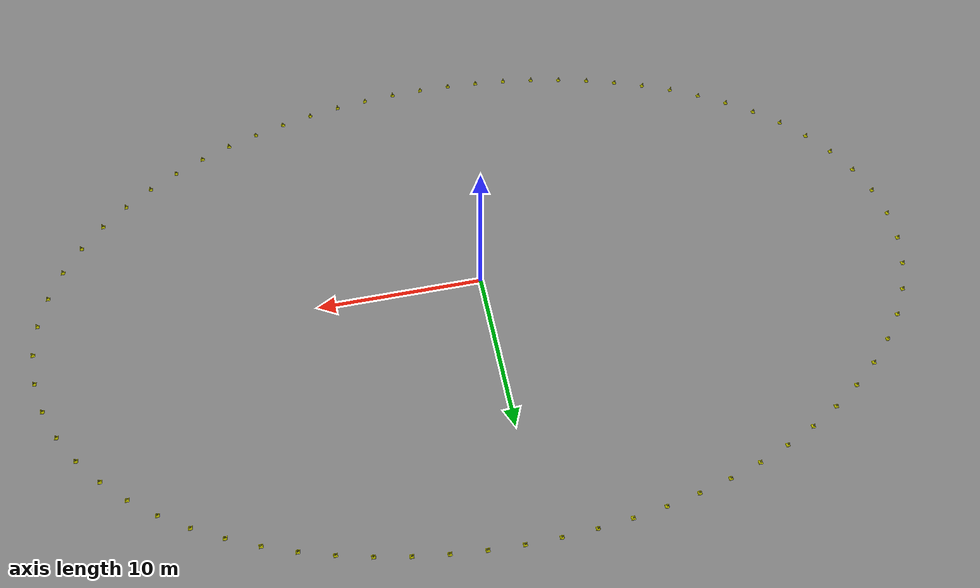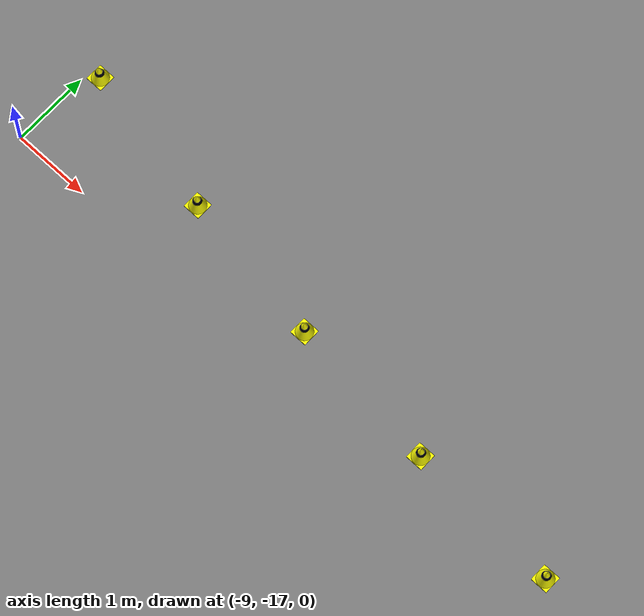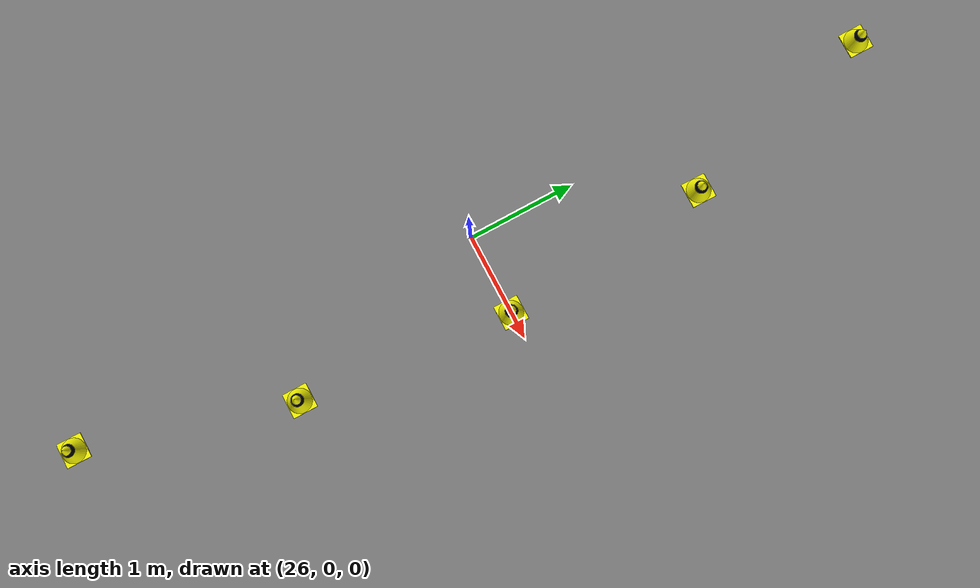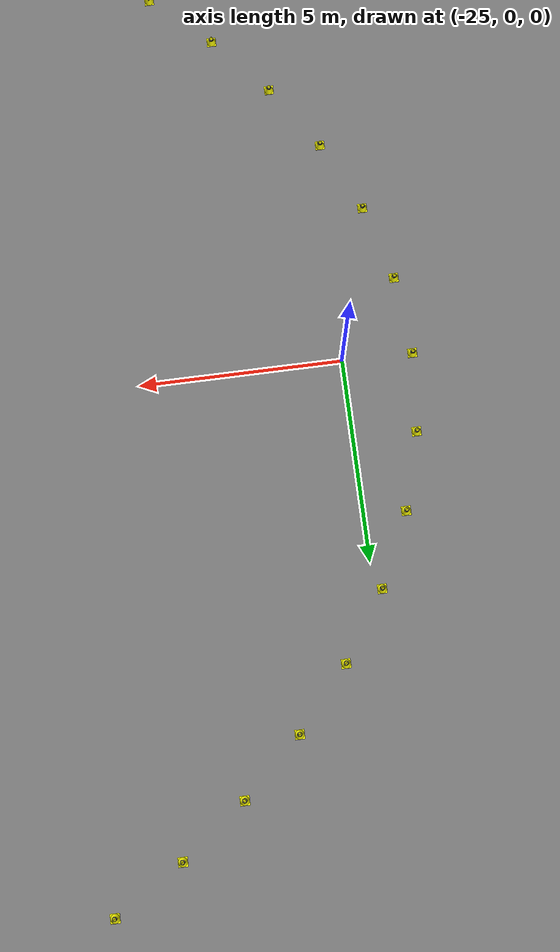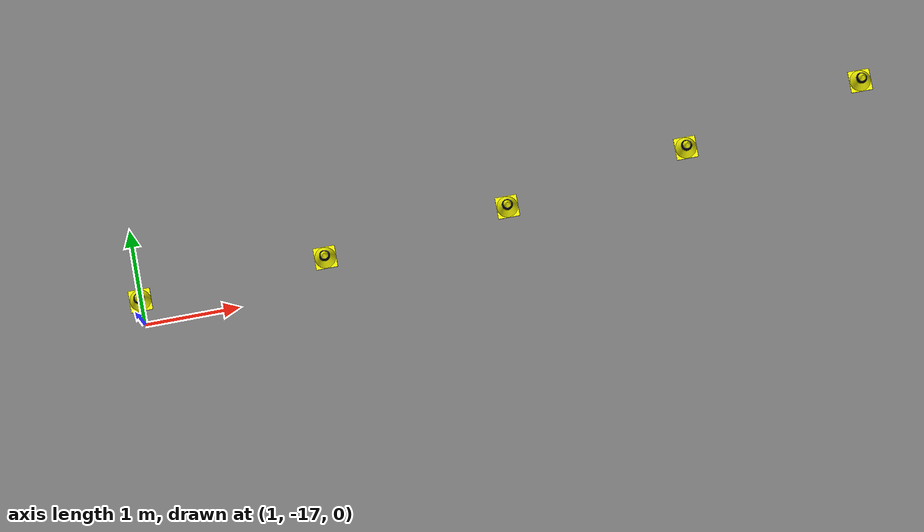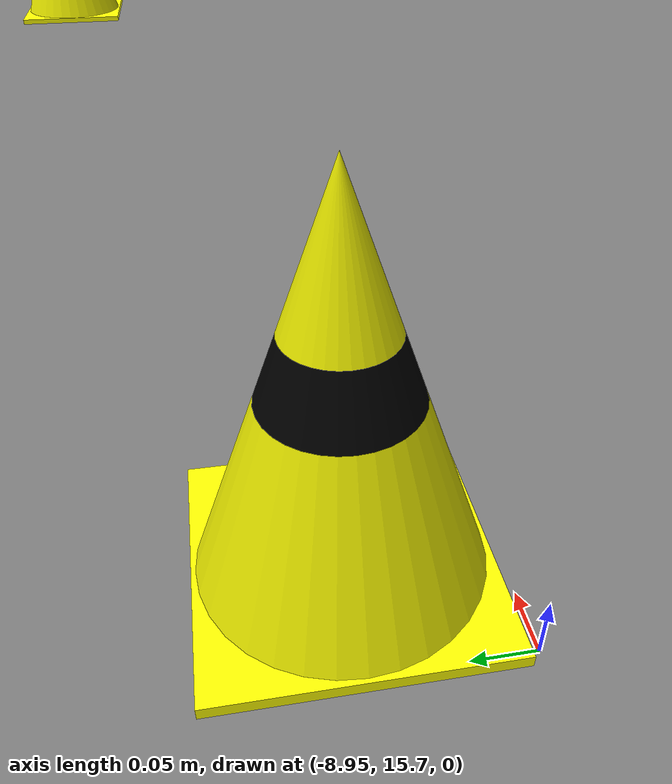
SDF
<sdf version="1.9">
 <world name="fsae_world">
  <plugin filename="gz-sim-physics-system" name="gz::sim::systems::Physics"/>
  <plugin filename="gz-sim-user-commands-system" name="gz::sim::systems::UserCommands"/>
  <plugin filename="gz-sim-scene-broadcaster-system" name="gz::sim::systems::SceneBroadcaster"/>
  <plugin filename="gz-sim-imu-system" name="gz::sim::systems::Imu"/>
  <plugin filename="gz-sim-sensors-system" name="gz::sim::systems::Sensors">
   <render_engine>ogre2</render_engine>
  </plugin>
  <scene><ambient>1.0 1.0 1.0</ambient><background>0.7 0.8 0.9</background></scene>
  <gravity>0 0 -9.81</gravity>
  <physics name="default_physics" type="ode">
   <max_step_size>0.001</max_step_size>
   <real_time_factor>1.0</real_time_factor>
  </physics>
  <light type="directional" name="sun">
   <pose>0 0 50 0 0 0</pose>
   <diffuse>0.9 0.9 0.9 1</diffuse>
   <specular>0.3 0.3 0.3 1</specular>
   <direction>-0.5 0.3 -1.0</direction>
  </light>
  <model name="ground_plane">
   <static>true</static>
   <link name="link">
    <collision name="collision">
     <geometry><plane><normal>0 0 1</normal><size>200 200</size></plane></geometry>
     <surface><friction><ode><mu>1.0</mu><mu2>1.0</mu2></ode></friction></surface>
    </collision>
    <visual name="visual">
     <geometry><plane><normal>0 0 1</normal><size>200 200</size></plane></geometry>
     <material><ambient>0.4 0.4 0.4 1</ambient><diffuse>0.5 0.5 0.5 1</diffuse></material>
    </visual>
   </link>
  </model>
  <include>
   <uri>model://cone_yellow</uri>
   <name>cone_yellow_0</name>
   <pose>26.7500 0.0000 0.1625 0 0 0</pose>
  </include>
  <include>
   <uri>model://cone_yellow</uri>
   <name>cone_yellow_1</name>
   <pose>26.5688 1.9694 0.1625 0 0 0</pose>
  </include>
  <include>
   <uri>model://cone_yellow</uri>
   <name>cone_yellow_2</name>
   <pose>26.0406 3.8755 0.1625 0 0 0</pose>
  </include>
  <include>
   <uri>model://cone_yellow</uri>
   <name>cone_yellow_3</name>
   <pose>25.2047 5.6686 0.1625 0 0 0</pose>
  </include>
  <include>
   <uri>model://cone_yellow</uri>
   <name>cone_yellow_4</name>
   <pose>24.1123 7.3186 0.1625 0 0 0</pose>
  </include>
  <include>
   <uri>model://cone_yellow</uri>
   <name>cone_yellow_5</name>
   <pose>22.8148 8.8131 0.1625 0 0 0</pose>
  </include>
  <include>
   <uri>model://cone_yellow</uri>
   <name>cone_yellow_6</name>
   <pose>21.3567 10.1520 0.1625 0 0 0</pose>
  </include>
  <include>
   <uri>model://cone_yellow</uri>
   <name>cone_yellow_7</name>
   <pose>19.7740 11.3413 0.1625 0 0 0</pose>
  </include>
  <include>
   <uri>model://cone_yellow</uri>
   <name>cone_yellow_8</name>
   <pose>18.0947 12.3900 0.1625 0 0 0</pose>
  </include>
  <include>
   <uri>model://cone_yellow</uri>
   <name>cone_yellow_9</name>
   <pose>16.3400 13.3073 0.1625 0 0 0</pose>
  </include>
  <include>
   <uri>model://cone_yellow</uri>
   <name>cone_yellow_10</name>
   <pose>14.5264 14.1019 0.1625 0 0 0</pose>
  </include>
  <include>
   <uri>model://cone_yellow</uri>
   <name>cone_yellow_11</name>
   <pose>12.6666 14.7818 0.1625 0 0 0</pose>
  </include>
  <include>
   <uri>model://cone_yellow</uri>
   <name>cone_yellow_12</name>
   <pose>10.7707 15.3533 0.1625 0 0 0</pose>
  </include>
  <include>
   <uri>model://cone_yellow</uri>
   <name>cone_yellow_13</name>
   <pose>8.8467 15.8219 0.1625 0 0 0</pose>
  </include>
  <include>
   <uri>model://cone_yellow</uri>
   <name>cone_yellow_14</name>
   <pose>6.9013 16.1917 0.1625 0 0 0</pose>
  </include>
  <include>
   <uri>model://cone_yellow</uri>
   <name>cone_yellow_15</name>
   <pose>4.9402 16.4664 0.1625 0 0 0</pose>
  </include>
  <include>
   <uri>model://cone_yellow</uri>
   <name>cone_yellow_16</name>
   <pose>2.9683 16.6482 0.1625 0 0 0</pose>
  </include>
  <include>
   <uri>model://cone_yellow</uri>
   <name>cone_yellow_17</name>
   <pose>0.9901 16.7387 0.1625 0 0 0</pose>
  </include>
  <include>
   <uri>model://cone_yellow</uri>
   <name>cone_yellow_18</name>
   <pose>-0.9901 16.7387 0.1625 0 0 0</pose>
  </include>
  <include>
   <uri>model://cone_yellow</uri>
   <name>cone_yellow_19</name>
   <pose>-2.9683 16.6482 0.1625 0 0 0</pose>
  </include>
  <include>
   <uri>model://cone_yellow</uri>
   <name>cone_yellow_20</name>
   <pose>-4.9402 16.4664 0.1625 0 0 0</pose>
  </include>
  <include>
   <uri>model://cone_yellow</uri>
   <name>cone_yellow_21</name>
   <pose>-6.9013 16.1917 0.1625 0 0 0</pose>
  </include>
  <include>
   <uri>model://cone_yellow</uri>
   <name>cone_yellow_22</name>
   <pose>-8.8467 15.8219 0.1625 0 0 0</pose>
  </include>
  <include>
   <uri>model://cone_yellow</uri>
   <name>cone_yellow_23</name>
   <pose>-10.7707 15.3533 0.1625 0 0 0</pose>
  </include>
  <include>
   <uri>model://cone_yellow</uri>
   <name>cone_yellow_24</name>
   <pose>-12.6666 14.7818 0.1625 0 0 0</pose>
  </include>
  <include>
   <uri>model://cone_yellow</uri>
   <name>cone_yellow_25</name>
   <pose>-14.5264 14.1019 0.1625 0 0 0</pose>
  </include>
  <include>
   <uri>model://cone_yellow</uri>
   <name>cone_yellow_26</name>
   <pose>-16.3400 13.3073 0.1625 0 0 0</pose>
  </include>
  <include>
   <uri>model://cone_yellow</uri>
   <name>cone_yellow_27</name>
   <pose>-18.0947 12.3900 0.1625 0 0 0</pose>
  </include>
  <include>
   <uri>model://cone_yellow</uri>
   <name>cone_yellow_28</name>
   <pose>-19.7740 11.3413 0.1625 0 0 0</pose>
  </include>
  <include>
   <uri>model://cone_yellow</uri>
   <name>cone_yellow_29</name>
   <pose>-21.3567 10.1520 0.1625 0 0 0</pose>
  </include>
  <include>
   <uri>model://cone_yellow</uri>
   <name>cone_yellow_30</name>
   <pose>-22.8148 8.8131 0.1625 0 0 0</pose>
  </include>
  <include>
   <uri>model://cone_yellow</uri>
   <name>cone_yellow_31</name>
   <pose>-24.1123 7.3186 0.1625 0 0 0</pose>
  </include>
  <include>
   <uri>model://cone_yellow</uri>
   <name>cone_yellow_32</name>
   <pose>-25.2047 5.6686 0.1625 0 0 0</pose>
  </include>
  <include>
   <uri>model://cone_yellow</uri>
   <name>cone_yellow_33</name>
   <pose>-26.0406 3.8755 0.1625 0 0 0</pose>
  </include>
  <include>
   <uri>model://cone_yellow</uri>
   <name>cone_yellow_34</name>
   <pose>-26.5688 1.9694 0.1625 0 0 0</pose>
  </include>
  <include>
   <uri>model://cone_yellow</uri>
   <name>cone_yellow_35</name>
   <pose>-26.7500 -0.0000 0.1625 0 0 0</pose>
  </include>
  <include>
   <uri>model://cone_yellow</uri>
   <name>cone_yellow_36</name>
   <pose>-26.5688 -1.9694 0.1625 0 0 0</pose>
  </include>
  <include>
   <uri>model://cone_yellow</uri>
   <name>cone_yellow_37</name>
   <pose>-26.0406 -3.8755 0.1625 0 0 0</pose>
  </include>
  <include>
   <uri>model://cone_yellow</uri>
   <name>cone_yellow_38</name>
   <pose>-25.2047 -5.6686 0.1625 0 0 0</pose>
  </include>
  <include>
   <uri>model://cone_yellow</uri>
   <name>cone_yellow_39</name>
   <pose>-24.1123 -7.3186 0.1625 0 0 0</pose>
  </include>
  <include>
   <uri>model://cone_yellow</uri>
   <name>cone_yellow_40</name>
   <pose>-22.8148 -8.8131 0.1625 0 0 0</pose>
  </include>
  <include>
   <uri>model://cone_yellow</uri>
   <name>cone_yellow_41</name>
   <pose>-21.3567 -10.1520 0.1625 0 0 0</pose>
  </include>
  <include>
   <uri>model://cone_yellow</uri>
   <name>cone_yellow_42</name>
   <pose>-19.7740 -11.3413 0.1625 0 0 0</pose>
  </include>
  <include>
   <uri>model://cone_yellow</uri>
   <name>cone_yellow_43</name>
   <pose>-18.0947 -12.3900 0.1625 0 0 0</pose>
  </include>
  <include>
   <uri>model://cone_yellow</uri>
   <name>cone_yellow_44</name>
   <pose>-16.3400 -13.3073 0.1625 0 0 0</pose>
  </include>
  <include>
   <uri>model://cone_yellow</uri>
   <name>cone_yellow_45</name>
   <pose>-14.5264 -14.1019 0.1625 0 0 0</pose>
  </include>
  <include>
   <uri>model://cone_yellow</uri>
   <name>cone_yellow_46</name>
   <pose>-12.6666 -14.7818 0.1625 0 0 0</pose>
  </include>
  <include>
   <uri>model://cone_yellow</uri>
   <name>cone_yellow_47</name>
   <pose>-10.7707 -15.3533 0.1625 0 0 0</pose>
  </include>
  <include>
   <uri>model://cone_yellow</uri>
   <name>cone_yellow_48</name>
   <pose>-8.8467 -15.8219 0.1625 0 0 0</pose>
  </include>
  <include>
   <uri>model://cone_yellow</uri>
   <name>cone_yellow_49</name>
   <pose>-6.9013 -16.1917 0.1625 0 0 0</pose>
  </include>
  <include>
   <uri>model://cone_yellow</uri>
   <name>cone_yellow_50</name>
   <pose>-4.9402 -16.4664 0.1625 0 0 0</pose>
  </include>
  <include>
   <uri>model://cone_yellow</uri>
   <name>cone_yellow_51</name>
   <pose>-2.9683 -16.6482 0.1625 0 0 0</pose>
  </include>
  <include>
   <uri>model://cone_yellow</uri>
   <name>cone_yellow_52</name>
   <pose>-0.9901 -16.7387 0.1625 0 0 0</pose>
  </include>
  <include>
   <uri>model://cone_yellow</uri>
   <name>cone_yellow_53</name>
   <pose>0.9901 -16.7387 0.1625 0 0 0</pose>
  </include>
  <include>
   <uri>model://cone_yellow</uri>
   <name>cone_yellow_54</name>
   <pose>2.9683 -16.6482 0.1625 0 0 0</pose>
  </include>
  <include>
   <uri>model://cone_yellow</uri>
   <name>cone_yellow_55</name>
   <pose>4.9402 -16.4664 0.1625 0 0 0</pose>
  </include>
  <include>
   <uri>model://cone_yellow</uri>
   <name>cone_yellow_56</name>
   <pose>6.9013 -16.1917 0.1625 0 0 0</pose>
  </include>
  <include>
   <uri>model://cone_yellow</uri>
   <name>cone_yellow_57</name>
   <pose>8.8467 -15.8219 0.1625 0 0 0</pose>
  </include>
  <include>
   <uri>model://cone_yellow</uri>
   <name>cone_yellow_58</name>
   <pose>10.7707 -15.3533 0.1625 0 0 0</pose>
  </include>
  <include>
   <uri>model://cone_yellow</uri>
   <name>cone_yellow_59</name>
   <pose>12.6666 -14.7818 0.1625 0 0 0</pose>
  </include>
  <include>
   <uri>model://cone_yellow</uri>
   <name>cone_yellow_60</name>
   <pose>14.5264 -14.1019 0.1625 0 0 0</pose>
  </include>
  <include>
   <uri>model://cone_yellow</uri>
   <name>cone_yellow_61</name>
   <pose>16.3400 -13.3073 0.1625 0 0 0</pose>
  </include>
  <include>
   <uri>model://cone_yellow</uri>
   <name>cone_yellow_62</name>
   <pose>18.0947 -12.3900 0.1625 0 0 0</pose>
  </include>
  <include>
   <uri>model://cone_yellow</uri>
   <name>cone_yellow_63</name>
   <pose>19.7740 -11.3413 0.1625 0 0 0</pose>
  </include>
  <include>
   <uri>model://cone_yellow</uri>
   <name>cone_yellow_64</name>
   <pose>21.3567 -10.1520 0.1625 0 0 0</pose>
  </include>
  <include>
   <uri>model://cone_yellow</uri>
   <name>cone_yellow_65</name>
   <pose>22.8148 -8.8131 0.1625 0 0 0</pose>
  </include>
  <include>
   <uri>model://cone_yellow</uri>
   <name>cone_yellow_66</name>
   <pose>24.1123 -7.3186 0.1625 0 0 0</pose>
  </include>
  <include>
   <uri>model://cone_yellow</uri>
   <name>cone_yellow_67</name>
   <pose>25.2047 -5.6686 0.1625 0 0 0</pose>
  </include>
  <include>
   <uri>model://cone_yellow</uri>
   <name>cone_yellow_68</name>
   <pose>26.0406 -3.8755 0.1625 0 0 0</pose>
  </include>
  <include>
   <uri>model://cone_yellow</uri>
   <name>cone_yellow_69</name>
   <pose>26.5688 -1.9694 0.1625 0 0 0</pose>
  </include>
 </world>
</sdf>

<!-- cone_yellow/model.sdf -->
<sdf version="1.9">
  <model name="cone_yellow">
    <static>true</static>
    <link name="link">
      <collision name="collision">
        <pose>0 0 -0.1625 0 0 0</pose>
        <geometry><mesh><uri>model://cone_yellow/meshes/cone.stl</uri></mesh></geometry>
      </collision>
      <visual name="body">
        <pose>0 0 -0.1625 0 0 0</pose>
        <geometry><mesh><uri>model://cone_yellow/meshes/body.stl</uri></mesh></geometry>
        <material><ambient>1.0 1.0 0.0 1</ambient><diffuse>1.0 1.0 0.0 1</diffuse></material>
      </visual>
      <visual name="stripe">
        <pose>0 0 -0.1625 0 0 0</pose>
        <geometry><mesh><uri>model://cone_yellow/meshes/stripe.stl</uri></mesh></geometry>
        <material><ambient>0.0 0.0 0.0 1</ambient><diffuse>0.0 0.0 0.0 1</diffuse></material>
      </visual>
    </link>
  </model>
</sdf>
